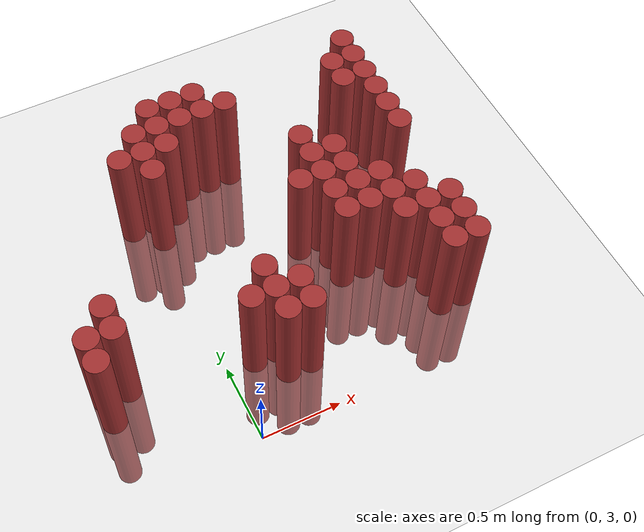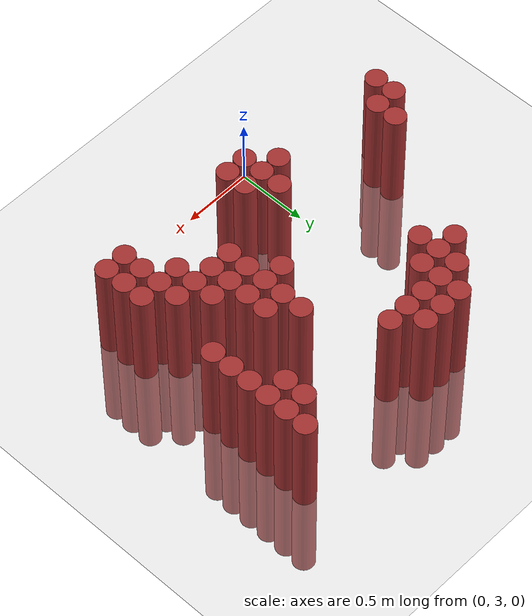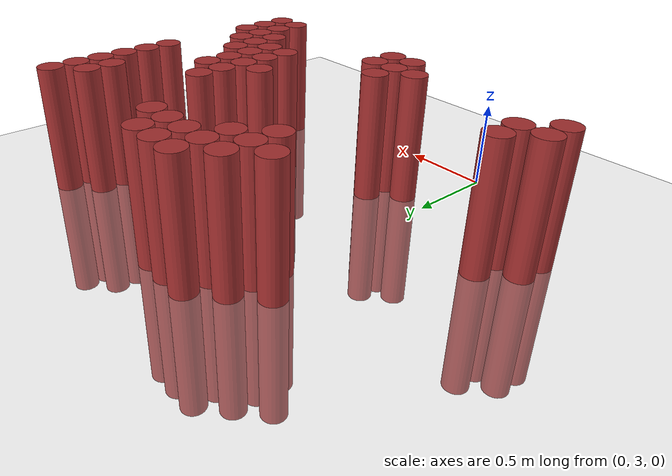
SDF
<sdf version="1.6">
 <world name="default">
  <model name="ground_plane">
   <static>1</static>
   <link name="link">
    <collision name="collision">
     <geometry><plane><normal>0 0 1</normal><size>100 100</size></plane></geometry>
     <surface><friction><ode><mu>100</mu><mu2>50</mu2></ode></friction></surface>
    </collision>
    <visual name="visual">
     <cast_shadows>0</cast_shadows>
     <geometry><plane><normal>0 0 1</normal><size>100 100</size></plane></geometry>
     <material>
      <script><uri>file://media/materials/scripts/gazebo.material</uri><name>Gazebo/Grey</name></script>
     </material>
    </visual>
   </link>
  </model>
  <model name="unit_cylinder_385">
   <static>1</static>
   <pose>-0.725000 3.475000 0.000000 0.000000 0.000000 0.000000</pose>
   <link name="link">
    <inertial>
     <mass>1</mass>
     <inertia><ixx>0.145833</ixx><ixy>0</ixy><ixz>0</ixz><iyy>0.145833</iyy><iyz>0</iyz><izz>0.125</izz></inertia>
    </inertial>
    <collision name="collision">
     <geometry><cylinder><radius>0.075000</radius><length>1.5</length></cylinder></geometry>
    </collision>
    <visual name="visual">
     <geometry><cylinder><radius>0.075000</radius><length>1.5</length></cylinder></geometry>
     <material>
      <ambient>0.648000 0.192000 0.192000 1</ambient>
      <diffuse>0.648000 0.192000 0.192000 1</diffuse>
     </material>
     <material>
      <script><name>Gazebo/Grey</name><uri>file://media/materials/scripts/gazebo.material</uri></script>
     </material>
    </visual>
   </link>
  </model>
  <model name="unit_cylinder_386">
   <static>1</static>
   <pose>-0.725000 3.625000 0.000000 0.000000 0.000000 0.000000</pose>
   <link name="link">
    <inertial>
     <mass>1</mass>
     <inertia><ixx>0.145833</ixx><ixy>0</ixy><ixz>0</ixz><iyy>0.145833</iyy><iyz>0</iyz><izz>0.125</izz></inertia>
    </inertial>
    <collision name="collision">
     <geometry><cylinder><radius>0.075000</radius><length>1.5</length></cylinder></geometry>
    </collision>
    <visual name="visual">
     <geometry><cylinder><radius>0.075000</radius><length>1.5</length></cylinder></geometry>
     <material>
      <ambient>0.648000 0.192000 0.192000 1</ambient>
      <diffuse>0.648000 0.192000 0.192000 1</diffuse>
     </material>
     <material>
      <script><name>Gazebo/Grey</name><uri>file://media/materials/scripts/gazebo.material</uri></script>
     </material>
    </visual>
   </link>
  </model>
  <model name="unit_cylinder_392">
   <static>1</static>
   <pose>-0.575000 3.625000 0.000000 0.000000 0.000000 0.000000</pose>
   <link name="link">
    <inertial>
     <mass>1</mass>
     <inertia><ixx>0.145833</ixx><ixy>0</ixy><ixz>0</ixz><iyy>0.145833</iyy><iyz>0</iyz><izz>0.125</izz></inertia>
    </inertial>
    <collision name="collision">
     <geometry><cylinder><radius>0.075000</radius><length>1.5</length></cylinder></geometry>
    </collision>
    <visual name="visual">
     <geometry><cylinder><radius>0.075000</radius><length>1.5</length></cylinder></geometry>
     <material>
      <ambient>0.648000 0.192000 0.192000 1</ambient>
      <diffuse>0.648000 0.192000 0.192000 1</diffuse>
     </material>
     <material>
      <script><name>Gazebo/Grey</name><uri>file://media/materials/scripts/gazebo.material</uri></script>
     </material>
    </visual>
   </link>
  </model>
  <model name="unit_cylinder_393">
   <static>1</static>
   <pose>-0.575000 3.775000 0.000000 0.000000 0.000000 0.000000</pose>
   <link name="link">
    <inertial>
     <mass>1</mass>
     <inertia><ixx>0.145833</ixx><ixy>0</ixy><ixz>0</ixz><iyy>0.145833</iyy><iyz>0</iyz><izz>0.125</izz></inertia>
    </inertial>
    <collision name="collision">
     <geometry><cylinder><radius>0.075000</radius><length>1.5</length></cylinder></geometry>
    </collision>
    <visual name="visual">
     <geometry><cylinder><radius>0.075000</radius><length>1.5</length></cylinder></geometry>
     <material>
      <ambient>0.648000 0.192000 0.192000 1</ambient>
      <diffuse>0.648000 0.192000 0.192000 1</diffuse>
     </material>
     <material>
      <script><name>Gazebo/Grey</name><uri>file://media/materials/scripts/gazebo.material</uri></script>
     </material>
    </visual>
   </link>
  </model>
  <model name="unit_cylinder_414">
   <static>1</static>
   <pose>-0.125000 4.675000 0.000000 0.000000 0.000000 0.000000</pose>
   <link name="link">
    <inertial>
     <mass>1</mass>
     <inertia><ixx>0.145833</ixx><ixy>0</ixy><ixz>0</ixz><iyy>0.145833</iyy><iyz>0</iyz><izz>0.125</izz></inertia>
    </inertial>
    <collision name="collision">
     <geometry><cylinder><radius>0.075000</radius><length>1.5</length></cylinder></geometry>
    </collision>
    <visual name="visual">
     <geometry><cylinder><radius>0.075000</radius><length>1.5</length></cylinder></geometry>
     <material>
      <ambient>0.648000 0.192000 0.192000 1</ambient>
      <diffuse>0.648000 0.192000 0.192000 1</diffuse>
     </material>
     <material>
      <script><name>Gazebo/Grey</name><uri>file://media/materials/scripts/gazebo.material</uri></script>
     </material>
    </visual>
   </link>
  </model>
  <model name="unit_cylinder_426">
   <static>1</static>
   <pose>0.025000 4.525000 0.000000 0.000000 0.000000 0.000000</pose>
   <link name="link">
    <inertial>
     <mass>1</mass>
     <inertia><ixx>0.145833</ixx><ixy>0</ixy><ixz>0</ixz><iyy>0.145833</iyy><iyz>0</iyz><izz>0.125</izz></inertia>
    </inertial>
    <collision name="collision">
     <geometry><cylinder><radius>0.075000</radius><length>1.5</length></cylinder></geometry>
    </collision>
    <visual name="visual">
     <geometry><cylinder><radius>0.075000</radius><length>1.5</length></cylinder></geometry>
     <material>
      <ambient>0.648000 0.192000 0.192000 1</ambient>
      <diffuse>0.648000 0.192000 0.192000 1</diffuse>
     </material>
     <material>
      <script><name>Gazebo/Grey</name><uri>file://media/materials/scripts/gazebo.material</uri></script>
     </material>
    </visual>
   </link>
  </model>
  <model name="unit_cylinder_427">
   <static>1</static>
   <pose>0.025000 4.675000 0.000000 0.000000 0.000000 0.000000</pose>
   <link name="link">
    <inertial>
     <mass>1</mass>
     <inertia><ixx>0.145833</ixx><ixy>0</ixy><ixz>0</ixz><iyy>0.145833</iyy><iyz>0</iyz><izz>0.125</izz></inertia>
    </inertial>
    <collision name="collision">
     <geometry><cylinder><radius>0.075000</radius><length>1.5</length></cylinder></geometry>
    </collision>
    <visual name="visual">
     <geometry><cylinder><radius>0.075000</radius><length>1.5</length></cylinder></geometry>
     <material>
      <ambient>0.648000 0.192000 0.192000 1</ambient>
      <diffuse>0.648000 0.192000 0.192000 1</diffuse>
     </material>
     <material>
      <script><name>Gazebo/Grey</name><uri>file://media/materials/scripts/gazebo.material</uri></script>
     </material>
    </visual>
   </link>
  </model>
  <model name="unit_cylinder_428">
   <static>1</static>
   <pose>0.025000 4.825000 0.000000 0.000000 0.000000 0.000000</pose>
   <link name="link">
    <inertial>
     <mass>1</mass>
     <inertia><ixx>0.145833</ixx><ixy>0</ixy><ixz>0</ixz><iyy>0.145833</iyy><iyz>0</iyz><izz>0.125</izz></inertia>
    </inertial>
    <collision name="collision">
     <geometry><cylinder><radius>0.075000</radius><length>1.5</length></cylinder></geometry>
    </collision>
    <visual name="visual">
     <geometry><cylinder><radius>0.075000</radius><length>1.5</length></cylinder></geometry>
     <material>
      <ambient>0.648000 0.192000 0.192000 1</ambient>
      <diffuse>0.648000 0.192000 0.192000 1</diffuse>
     </material>
     <material>
      <script><name>Gazebo/Grey</name><uri>file://media/materials/scripts/gazebo.material</uri></script>
     </material>
    </visual>
   </link>
  </model>
  <model name="unit_cylinder_441">
   <static>1</static>
   <pose>0.175000 3.475000 0.000000 0.000000 0.000000 0.000000</pose>
   <link name="link">
    <inertial>
     <mass>1</mass>
     <inertia><ixx>0.145833</ixx><ixy>0</ixy><ixz>0</ixz><iyy>0.145833</iyy><iyz>0</iyz><izz>0.125</izz></inertia>
    </inertial>
    <collision name="collision">
     <geometry><cylinder><radius>0.075000</radius><length>1.5</length></cylinder></geometry>
    </collision>
    <visual name="visual">
     <geometry><cylinder><radius>0.075000</radius><length>1.5</length></cylinder></geometry>
     <material>
      <ambient>0.648000 0.192000 0.192000 1</ambient>
      <diffuse>0.648000 0.192000 0.192000 1</diffuse>
     </material>
     <material>
      <script><name>Gazebo/Grey</name><uri>file://media/materials/scripts/gazebo.material</uri></script>
     </material>
    </visual>
   </link>
  </model>
  <model name="unit_cylinder_442">
   <static>1</static>
   <pose>0.175000 4.675000 0.000000 0.000000 0.000000 0.000000</pose>
   <link name="link">
    <inertial>
     <mass>1</mass>
     <inertia><ixx>0.145833</ixx><ixy>0</ixy><ixz>0</ixz><iyy>0.145833</iyy><iyz>0</iyz><izz>0.125</izz></inertia>
    </inertial>
    <collision name="collision">
     <geometry><cylinder><radius>0.075000</radius><length>1.5</length></cylinder></geometry>
    </collision>
    <visual name="visual">
     <geometry><cylinder><radius>0.075000</radius><length>1.5</length></cylinder></geometry>
     <material>
      <ambient>0.648000 0.192000 0.192000 1</ambient>
      <diffuse>0.648000 0.192000 0.192000 1</diffuse>
     </material>
     <material>
      <script><name>Gazebo/Grey</name><uri>file://media/materials/scripts/gazebo.material</uri></script>
     </material>
    </visual>
   </link>
  </model>
  <model name="unit_cylinder_443">
   <static>1</static>
   <pose>0.175000 4.825000 0.000000 0.000000 0.000000 0.000000</pose>
   <link name="link">
    <inertial>
     <mass>1</mass>
     <inertia><ixx>0.145833</ixx><ixy>0</ixy><ixz>0</ixz><iyy>0.145833</iyy><iyz>0</iyz><izz>0.125</izz></inertia>
    </inertial>
    <collision name="collision">
     <geometry><cylinder><radius>0.075000</radius><length>1.5</length></cylinder></geometry>
    </collision>
    <visual name="visual">
     <geometry><cylinder><radius>0.075000</radius><length>1.5</length></cylinder></geometry>
     <material>
      <ambient>0.648000 0.192000 0.192000 1</ambient>
      <diffuse>0.648000 0.192000 0.192000 1</diffuse>
     </material>
     <material>
      <script><name>Gazebo/Grey</name><uri>file://media/materials/scripts/gazebo.material</uri></script>
     </material>
    </visual>
   </link>
  </model>
  <model name="unit_cylinder_444">
   <static>1</static>
   <pose>0.175000 4.975000 0.000000 0.000000 0.000000 0.000000</pose>
   <link name="link">
    <inertial>
     <mass>1</mass>
     <inertia><ixx>0.145833</ixx><ixy>0</ixy><ixz>0</ixz><iyy>0.145833</iyy><iyz>0</iyz><izz>0.125</izz></inertia>
    </inertial>
    <collision name="collision">
     <geometry><cylinder><radius>0.075000</radius><length>1.5</length></cylinder></geometry>
    </collision>
    <visual name="visual">
     <geometry><cylinder><radius>0.075000</radius><length>1.5</length></cylinder></geometry>
     <material>
      <ambient>0.648000 0.192000 0.192000 1</ambient>
      <diffuse>0.648000 0.192000 0.192000 1</diffuse>
     </material>
     <material>
      <script><name>Gazebo/Grey</name><uri>file://media/materials/scripts/gazebo.material</uri></script>
     </material>
    </visual>
   </link>
  </model>
  <model name="unit_cylinder_455">
   <static>1</static>
   <pose>0.325000 3.325000 0.000000 0.000000 0.000000 0.000000</pose>
   <link name="link">
    <inertial>
     <mass>1</mass>
     <inertia><ixx>0.145833</ixx><ixy>0</ixy><ixz>0</ixz><iyy>0.145833</iyy><iyz>0</iyz><izz>0.125</izz></inertia>
    </inertial>
    <collision name="collision">
     <geometry><cylinder><radius>0.075000</radius><length>1.5</length></cylinder></geometry>
    </collision>
    <visual name="visual">
     <geometry><cylinder><radius>0.075000</radius><length>1.5</length></cylinder></geometry>
     <material>
      <ambient>0.648000 0.192000 0.192000 1</ambient>
      <diffuse>0.648000 0.192000 0.192000 1</diffuse>
     </material>
     <material>
      <script><name>Gazebo/Grey</name><uri>file://media/materials/scripts/gazebo.material</uri></script>
     </material>
    </visual>
   </link>
  </model>
  <model name="unit_cylinder_456">
   <static>1</static>
   <pose>0.325000 3.475000 0.000000 0.000000 0.000000 0.000000</pose>
   <link name="link">
    <inertial>
     <mass>1</mass>
     <inertia><ixx>0.145833</ixx><ixy>0</ixy><ixz>0</ixz><iyy>0.145833</iyy><iyz>0</iyz><izz>0.125</izz></inertia>
    </inertial>
    <collision name="collision">
     <geometry><cylinder><radius>0.075000</radius><length>1.5</length></cylinder></geometry>
    </collision>
    <visual name="visual">
     <geometry><cylinder><radius>0.075000</radius><length>1.5</length></cylinder></geometry>
     <material>
      <ambient>0.648000 0.192000 0.192000 1</ambient>
      <diffuse>0.648000 0.192000 0.192000 1</diffuse>
     </material>
     <material>
      <script><name>Gazebo/Grey</name><uri>file://media/materials/scripts/gazebo.material</uri></script>
     </material>
    </visual>
   </link>
  </model>
  <model name="unit_cylinder_457">
   <static>1</static>
   <pose>0.325000 3.625000 0.000000 0.000000 0.000000 0.000000</pose>
   <link name="link">
    <inertial>
     <mass>1</mass>
     <inertia><ixx>0.145833</ixx><ixy>0</ixy><ixz>0</ixz><iyy>0.145833</iyy><iyz>0</iyz><izz>0.125</izz></inertia>
    </inertial>
    <collision name="collision">
     <geometry><cylinder><radius>0.075000</radius><length>1.5</length></cylinder></geometry>
    </collision>
    <visual name="visual">
     <geometry><cylinder><radius>0.075000</radius><length>1.5</length></cylinder></geometry>
     <material>
      <ambient>0.648000 0.192000 0.192000 1</ambient>
      <diffuse>0.648000 0.192000 0.192000 1</diffuse>
     </material>
     <material>
      <script><name>Gazebo/Grey</name><uri>file://media/materials/scripts/gazebo.material</uri></script>
     </material>
    </visual>
   </link>
  </model>
  <model name="unit_cylinder_458">
   <static>1</static>
   <pose>0.325000 4.825000 0.000000 0.000000 0.000000 0.000000</pose>
   <link name="link">
    <inertial>
     <mass>1</mass>
     <inertia><ixx>0.145833</ixx><ixy>0</ixy><ixz>0</ixz><iyy>0.145833</iyy><iyz>0</iyz><izz>0.125</izz></inertia>
    </inertial>
    <collision name="collision">
     <geometry><cylinder><radius>0.075000</radius><length>1.5</length></cylinder></geometry>
    </collision>
    <visual name="visual">
     <geometry><cylinder><radius>0.075000</radius><length>1.5</length></cylinder></geometry>
     <material>
      <ambient>0.648000 0.192000 0.192000 1</ambient>
      <diffuse>0.648000 0.192000 0.192000 1</diffuse>
     </material>
     <material>
      <script><name>Gazebo/Grey</name><uri>file://media/materials/scripts/gazebo.material</uri></script>
     </material>
    </visual>
   </link>
  </model>
  <model name="unit_cylinder_459">
   <static>1</static>
   <pose>0.325000 4.975000 0.000000 0.000000 0.000000 0.000000</pose>
   <link name="link">
    <inertial>
     <mass>1</mass>
     <inertia><ixx>0.145833</ixx><ixy>0</ixy><ixz>0</ixz><iyy>0.145833</iyy><iyz>0</iyz><izz>0.125</izz></inertia>
    </inertial>
    <collision name="collision">
     <geometry><cylinder><radius>0.075000</radius><length>1.5</length></cylinder></geometry>
    </collision>
    <visual name="visual">
     <geometry><cylinder><radius>0.075000</radius><length>1.5</length></cylinder></geometry>
     <material>
      <ambient>0.648000 0.192000 0.192000 1</ambient>
      <diffuse>0.648000 0.192000 0.192000 1</diffuse>
     </material>
     <material>
      <script><name>Gazebo/Grey</name><uri>file://media/materials/scripts/gazebo.material</uri></script>
     </material>
    </visual>
   </link>
  </model>
  <model name="unit_cylinder_469">
   <static>1</static>
   <pose>0.475000 3.325000 0.000000 0.000000 0.000000 0.000000</pose>
   <link name="link">
    <inertial>
     <mass>1</mass>
     <inertia><ixx>0.145833</ixx><ixy>0</ixy><ixz>0</ixz><iyy>0.145833</iyy><iyz>0</iyz><izz>0.125</izz></inertia>
    </inertial>
    <collision name="collision">
     <geometry><cylinder><radius>0.075000</radius><length>1.5</length></cylinder></geometry>
    </collision>
    <visual name="visual">
     <geometry><cylinder><radius>0.075000</radius><length>1.5</length></cylinder></geometry>
     <material>
      <ambient>0.648000 0.192000 0.192000 1</ambient>
      <diffuse>0.648000 0.192000 0.192000 1</diffuse>
     </material>
     <material>
      <script><name>Gazebo/Grey</name><uri>file://media/materials/scripts/gazebo.material</uri></script>
     </material>
    </visual>
   </link>
  </model>
  <model name="unit_cylinder_470">
   <static>1</static>
   <pose>0.475000 3.475000 0.000000 0.000000 0.000000 0.000000</pose>
   <link name="link">
    <inertial>
     <mass>1</mass>
     <inertia><ixx>0.145833</ixx><ixy>0</ixy><ixz>0</ixz><iyy>0.145833</iyy><iyz>0</iyz><izz>0.125</izz></inertia>
    </inertial>
    <collision name="collision">
     <geometry><cylinder><radius>0.075000</radius><length>1.5</length></cylinder></geometry>
    </collision>
    <visual name="visual">
     <geometry><cylinder><radius>0.075000</radius><length>1.5</length></cylinder></geometry>
     <material>
      <ambient>0.648000 0.192000 0.192000 1</ambient>
      <diffuse>0.648000 0.192000 0.192000 1</diffuse>
     </material>
     <material>
      <script><name>Gazebo/Grey</name><uri>file://media/materials/scripts/gazebo.material</uri></script>
     </material>
    </visual>
   </link>
  </model>
  <model name="unit_cylinder_471">
   <static>1</static>
   <pose>0.475000 4.825000 0.000000 0.000000 0.000000 0.000000</pose>
   <link name="link">
    <inertial>
     <mass>1</mass>
     <inertia><ixx>0.145833</ixx><ixy>0</ixy><ixz>0</ixz><iyy>0.145833</iyy><iyz>0</iyz><izz>0.125</izz></inertia>
    </inertial>
    <collision name="collision">
     <geometry><cylinder><radius>0.075000</radius><length>1.5</length></cylinder></geometry>
    </collision>
    <visual name="visual">
     <geometry><cylinder><radius>0.075000</radius><length>1.5</length></cylinder></geometry>
     <material>
      <ambient>0.648000 0.192000 0.192000 1</ambient>
      <diffuse>0.648000 0.192000 0.192000 1</diffuse>
     </material>
     <material>
      <script><name>Gazebo/Grey</name><uri>file://media/materials/scripts/gazebo.material</uri></script>
     </material>
    </visual>
   </link>
  </model>
  <model name="unit_cylinder_472">
   <static>1</static>
   <pose>0.475000 4.975000 0.000000 0.000000 0.000000 0.000000</pose>
   <link name="link">
    <inertial>
     <mass>1</mass>
     <inertia><ixx>0.145833</ixx><ixy>0</ixy><ixz>0</ixz><iyy>0.145833</iyy><iyz>0</iyz><izz>0.125</izz></inertia>
    </inertial>
    <collision name="collision">
     <geometry><cylinder><radius>0.075000</radius><length>1.5</length></cylinder></geometry>
    </collision>
    <visual name="visual">
     <geometry><cylinder><radius>0.075000</radius><length>1.5</length></cylinder></geometry>
     <material>
      <ambient>0.648000 0.192000 0.192000 1</ambient>
      <diffuse>0.648000 0.192000 0.192000 1</diffuse>
     </material>
     <material>
      <script><name>Gazebo/Grey</name><uri>file://media/materials/scripts/gazebo.material</uri></script>
     </material>
    </visual>
   </link>
  </model>
  <model name="unit_cylinder_478">
   <static>1</static>
   <pose>0.625000 4.825000 0.000000 0.000000 0.000000 0.000000</pose>
   <link name="link">
    <inertial>
     <mass>1</mass>
     <inertia><ixx>0.145833</ixx><ixy>0</ixy><ixz>0</ixz><iyy>0.145833</iyy><iyz>0</iyz><izz>0.125</izz></inertia>
    </inertial>
    <collision name="collision">
     <geometry><cylinder><radius>0.075000</radius><length>1.5</length></cylinder></geometry>
    </collision>
    <visual name="visual">
     <geometry><cylinder><radius>0.075000</radius><length>1.5</length></cylinder></geometry>
     <material>
      <ambient>0.648000 0.192000 0.192000 1</ambient>
      <diffuse>0.648000 0.192000 0.192000 1</diffuse>
     </material>
     <material>
      <script><name>Gazebo/Grey</name><uri>file://media/materials/scripts/gazebo.material</uri></script>
     </material>
    </visual>
   </link>
  </model>
  <model name="unit_cylinder_488">
   <static>1</static>
   <pose>0.775000 4.075000 0.000000 0.000000 0.000000 0.000000</pose>
   <link name="link">
    <inertial>
     <mass>1</mass>
     <inertia><ixx>0.145833</ixx><ixy>0</ixy><ixz>0</ixz><iyy>0.145833</iyy><iyz>0</iyz><izz>0.125</izz></inertia>
    </inertial>
    <collision name="collision">
     <geometry><cylinder><radius>0.075000</radius><length>1.5</length></cylinder></geometry>
    </collision>
    <visual name="visual">
     <geometry><cylinder><radius>0.075000</radius><length>1.5</length></cylinder></geometry>
     <material>
      <ambient>0.648000 0.192000 0.192000 1</ambient>
      <diffuse>0.648000 0.192000 0.192000 1</diffuse>
     </material>
     <material>
      <script><name>Gazebo/Grey</name><uri>file://media/materials/scripts/gazebo.material</uri></script>
     </material>
    </visual>
   </link>
  </model>
  <model name="unit_cylinder_491">
   <static>1</static>
   <pose>0.925000 3.775000 0.000000 0.000000 0.000000 0.000000</pose>
   <link name="link">
    <inertial>
     <mass>1</mass>
     <inertia><ixx>0.145833</ixx><ixy>0</ixy><ixz>0</ixz><iyy>0.145833</iyy><iyz>0</iyz><izz>0.125</izz></inertia>
    </inertial>
    <collision name="collision">
     <geometry><cylinder><radius>0.075000</radius><length>1.5</length></cylinder></geometry>
    </collision>
    <visual name="visual">
     <geometry><cylinder><radius>0.075000</radius><length>1.5</length></cylinder></geometry>
     <material>
      <ambient>0.648000 0.192000 0.192000 1</ambient>
      <diffuse>0.648000 0.192000 0.192000 1</diffuse>
     </material>
     <material>
      <script><name>Gazebo/Grey</name><uri>file://media/materials/scripts/gazebo.material</uri></script>
     </material>
    </visual>
   </link>
  </model>
  <model name="unit_cylinder_492">
   <static>1</static>
   <pose>0.925000 3.925000 0.000000 0.000000 0.000000 0.000000</pose>
   <link name="link">
    <inertial>
     <mass>1</mass>
     <inertia><ixx>0.145833</ixx><ixy>0</ixy><ixz>0</ixz><iyy>0.145833</iyy><iyz>0</iyz><izz>0.125</izz></inertia>
    </inertial>
    <collision name="collision">
     <geometry><cylinder><radius>0.075000</radius><length>1.5</length></cylinder></geometry>
    </collision>
    <visual name="visual">
     <geometry><cylinder><radius>0.075000</radius><length>1.5</length></cylinder></geometry>
     <material>
      <ambient>0.648000 0.192000 0.192000 1</ambient>
      <diffuse>0.648000 0.192000 0.192000 1</diffuse>
     </material>
     <material>
      <script><name>Gazebo/Grey</name><uri>file://media/materials/scripts/gazebo.material</uri></script>
     </material>
    </visual>
   </link>
  </model>
  <model name="unit_cylinder_493">
   <static>1</static>
   <pose>0.925000 4.075000 0.000000 0.000000 0.000000 0.000000</pose>
   <link name="link">
    <inertial>
     <mass>1</mass>
     <inertia><ixx>0.145833</ixx><ixy>0</ixy><ixz>0</ixz><iyy>0.145833</iyy><iyz>0</iyz><izz>0.125</izz></inertia>
    </inertial>
    <collision name="collision">
     <geometry><cylinder><radius>0.075000</radius><length>1.5</length></cylinder></geometry>
    </collision>
    <visual name="visual">
     <geometry><cylinder><radius>0.075000</radius><length>1.5</length></cylinder></geometry>
     <material>
      <ambient>0.648000 0.192000 0.192000 1</ambient>
      <diffuse>0.648000 0.192000 0.192000 1</diffuse>
     </material>
     <material>
      <script><name>Gazebo/Grey</name><uri>file://media/materials/scripts/gazebo.material</uri></script>
     </material>
    </visual>
   </link>
  </model>
  <model name="unit_cylinder_494">
   <static>1</static>
   <pose>0.925000 4.225000 0.000000 0.000000 0.000000 0.000000</pose>
   <link name="link">
    <inertial>
     <mass>1</mass>
     <inertia><ixx>0.145833</ixx><ixy>0</ixy><ixz>0</ixz><iyy>0.145833</iyy><iyz>0</iyz><izz>0.125</izz></inertia>
    </inertial>
    <collision name="collision">
     <geometry><cylinder><radius>0.075000</radius><length>1.5</length></cylinder></geometry>
    </collision>
    <visual name="visual">
     <geometry><cylinder><radius>0.075000</radius><length>1.5</length></cylinder></geometry>
     <material>
      <ambient>0.648000 0.192000 0.192000 1</ambient>
      <diffuse>0.648000 0.192000 0.192000 1</diffuse>
     </material>
     <material>
      <script><name>Gazebo/Grey</name><uri>file://media/materials/scripts/gazebo.material</uri></script>
     </material>
    </visual>
   </link>
  </model>
  <model name="unit_cylinder_495">
   <static>1</static>
   <pose>0.925000 4.375000 0.000000 0.000000 0.000000 0.000000</pose>
   <link name="link">
    <inertial>
     <mass>1</mass>
     <inertia><ixx>0.145833</ixx><ixy>0</ixy><ixz>0</ixz><iyy>0.145833</iyy><iyz>0</iyz><izz>0.125</izz></inertia>
    </inertial>
    <collision name="collision">
     <geometry><cylinder><radius>0.075000</radius><length>1.5</length></cylinder></geometry>
    </collision>
    <visual name="visual">
     <geometry><cylinder><radius>0.075000</radius><length>1.5</length></cylinder></geometry>
     <material>
      <ambient>0.648000 0.192000 0.192000 1</ambient>
      <diffuse>0.648000 0.192000 0.192000 1</diffuse>
     </material>
     <material>
      <script><name>Gazebo/Grey</name><uri>file://media/materials/scripts/gazebo.material</uri></script>
     </material>
    </visual>
   </link>
  </model>
  <model name="unit_cylinder_496">
   <static>1</static>
   <pose>1.075000 3.775000 0.000000 0.000000 0.000000 0.000000</pose>
   <link name="link">
    <inertial>
     <mass>1</mass>
     <inertia><ixx>0.145833</ixx><ixy>0</ixy><ixz>0</ixz><iyy>0.145833</iyy><iyz>0</iyz><izz>0.125</izz></inertia>
    </inertial>
    <collision name="collision">
     <geometry><cylinder><radius>0.075000</radius><length>1.5</length></cylinder></geometry>
    </collision>
    <visual name="visual">
     <geometry><cylinder><radius>0.075000</radius><length>1.5</length></cylinder></geometry>
     <material>
      <ambient>0.648000 0.192000 0.192000 1</ambient>
      <diffuse>0.648000 0.192000 0.192000 1</diffuse>
     </material>
     <material>
      <script><name>Gazebo/Grey</name><uri>file://media/materials/scripts/gazebo.material</uri></script>
     </material>
    </visual>
   </link>
  </model>
  <model name="unit_cylinder_497">
   <static>1</static>
   <pose>1.075000 3.925000 0.000000 0.000000 0.000000 0.000000</pose>
   <link name="link">
    <inertial>
     <mass>1</mass>
     <inertia><ixx>0.145833</ixx><ixy>0</ixy><ixz>0</ixz><iyy>0.145833</iyy><iyz>0</iyz><izz>0.125</izz></inertia>
    </inertial>
    <collision name="collision">
     <geometry><cylinder><radius>0.075000</radius><length>1.5</length></cylinder></geometry>
    </collision>
    <visual name="visual">
     <geometry><cylinder><radius>0.075000</radius><length>1.5</length></cylinder></geometry>
     <material>
      <ambient>0.648000 0.192000 0.192000 1</ambient>
      <diffuse>0.648000 0.192000 0.192000 1</diffuse>
     </material>
     <material>
      <script><name>Gazebo/Grey</name><uri>file://media/materials/scripts/gazebo.material</uri></script>
     </material>
    </visual>
   </link>
  </model>
  <model name="unit_cylinder_498">
   <static>1</static>
   <pose>1.075000 4.075000 0.000000 0.000000 0.000000 0.000000</pose>
   <link name="link">
    <inertial>
     <mass>1</mass>
     <inertia><ixx>0.145833</ixx><ixy>0</ixy><ixz>0</ixz><iyy>0.145833</iyy><iyz>0</iyz><izz>0.125</izz></inertia>
    </inertial>
    <collision name="collision">
     <geometry><cylinder><radius>0.075000</radius><length>1.5</length></cylinder></geometry>
    </collision>
    <visual name="visual">
     <geometry><cylinder><radius>0.075000</radius><length>1.5</length></cylinder></geometry>
     <material>
      <ambient>0.648000 0.192000 0.192000 1</ambient>
      <diffuse>0.648000 0.192000 0.192000 1</diffuse>
     </material>
     <material>
      <script><name>Gazebo/Grey</name><uri>file://media/materials/scripts/gazebo.material</uri></script>
     </material>
    </visual>
   </link>
  </model>
  <model name="unit_cylinder_499">
   <static>1</static>
   <pose>1.075000 4.225000 0.000000 0.000000 0.000000 0.000000</pose>
   <link name="link">
    <inertial>
     <mass>1</mass>
     <inertia><ixx>0.145833</ixx><ixy>0</ixy><ixz>0</ixz><iyy>0.145833</iyy><iyz>0</iyz><izz>0.125</izz></inertia>
    </inertial>
    <collision name="collision">
     <geometry><cylinder><radius>0.075000</radius><length>1.5</length></cylinder></geometry>
    </collision>
    <visual name="visual">
     <geometry><cylinder><radius>0.075000</radius><length>1.5</length></cylinder></geometry>
     <material>
      <ambient>0.648000 0.192000 0.192000 1</ambient>
      <diffuse>0.648000 0.192000 0.192000 1</diffuse>
     </material>
     <material>
      <script><name>Gazebo/Grey</name><uri>file://media/materials/scripts/gazebo.material</uri></script>
     </material>
    </visual>
   </link>
  </model>
  <model name="unit_cylinder_502">
   <static>1</static>
   <pose>1.225000 3.625000 0.000000 0.000000 0.000000 0.000000</pose>
   <link name="link">
    <inertial>
     <mass>1</mass>
     <inertia><ixx>0.145833</ixx><ixy>0</ixy><ixz>0</ixz><iyy>0.145833</iyy><iyz>0</iyz><izz>0.125</izz></inertia>
    </inertial>
    <collision name="collision">
     <geometry><cylinder><radius>0.075000</radius><length>1.5</length></cylinder></geometry>
    </collision>
    <visual name="visual">
     <geometry><cylinder><radius>0.075000</radius><length>1.5</length></cylinder></geometry>
     <material>
      <ambient>0.648000 0.192000 0.192000 1</ambient>
      <diffuse>0.648000 0.192000 0.192000 1</diffuse>
     </material>
     <material>
      <script><name>Gazebo/Grey</name><uri>file://media/materials/scripts/gazebo.material</uri></script>
     </material>
    </visual>
   </link>
  </model>
  <model name="unit_cylinder_503">
   <static>1</static>
   <pose>1.225000 3.775000 0.000000 0.000000 0.000000 0.000000</pose>
   <link name="link">
    <inertial>
     <mass>1</mass>
     <inertia><ixx>0.145833</ixx><ixy>0</ixy><ixz>0</ixz><iyy>0.145833</iyy><iyz>0</iyz><izz>0.125</izz></inertia>
    </inertial>
    <collision name="collision">
     <geometry><cylinder><radius>0.075000</radius><length>1.5</length></cylinder></geometry>
    </collision>
    <visual name="visual">
     <geometry><cylinder><radius>0.075000</radius><length>1.5</length></cylinder></geometry>
     <material>
      <ambient>0.648000 0.192000 0.192000 1</ambient>
      <diffuse>0.648000 0.192000 0.192000 1</diffuse>
     </material>
     <material>
      <script><name>Gazebo/Grey</name><uri>file://media/materials/scripts/gazebo.material</uri></script>
     </material>
    </visual>
   </link>
  </model>
  <model name="unit_cylinder_504">
   <static>1</static>
   <pose>1.225000 3.925000 0.000000 0.000000 0.000000 0.000000</pose>
   <link name="link">
    <inertial>
     <mass>1</mass>
     <inertia><ixx>0.145833</ixx><ixy>0</ixy><ixz>0</ixz><iyy>0.145833</iyy><iyz>0</iyz><izz>0.125</izz></inertia>
    </inertial>
    <collision name="collision">
     <geometry><cylinder><radius>0.075000</radius><length>1.5</length></cylinder></geometry>
    </collision>
    <visual name="visual">
     <geometry><cylinder><radius>0.075000</radius><length>1.5</length></cylinder></geometry>
     <material>
      <ambient>0.648000 0.192000 0.192000 1</ambient>
      <diffuse>0.648000 0.192000 0.192000 1</diffuse>
     </material>
     <material>
      <script><name>Gazebo/Grey</name><uri>file://media/materials/scripts/gazebo.material</uri></script>
     </material>
    </visual>
   </link>
  </model>
  <model name="unit_cylinder_508">
   <static>1</static>
   <pose>1.375000 3.325000 0.000000 0.000000 0.000000 0.000000</pose>
   <link name="link">
    <inertial>
     <mass>1</mass>
     <inertia><ixx>0.145833</ixx><ixy>0</ixy><ixz>0</ixz><iyy>0.145833</iyy><iyz>0</iyz><izz>0.125</izz></inertia>
    </inertial>
    <collision name="collision">
     <geometry><cylinder><radius>0.075000</radius><length>1.5</length></cylinder></geometry>
    </collision>
    <visual name="visual">
     <geometry><cylinder><radius>0.075000</radius><length>1.5</length></cylinder></geometry>
     <material>
      <ambient>0.648000 0.192000 0.192000 1</ambient>
      <diffuse>0.648000 0.192000 0.192000 1</diffuse>
     </material>
     <material>
      <script><name>Gazebo/Grey</name><uri>file://media/materials/scripts/gazebo.material</uri></script>
     </material>
    </visual>
   </link>
  </model>
  <model name="unit_cylinder_509">
   <static>1</static>
   <pose>1.375000 3.475000 0.000000 0.000000 0.000000 0.000000</pose>
   <link name="link">
    <inertial>
     <mass>1</mass>
     <inertia><ixx>0.145833</ixx><ixy>0</ixy><ixz>0</ixz><iyy>0.145833</iyy><iyz>0</iyz><izz>0.125</izz></inertia>
    </inertial>
    <collision name="collision">
     <geometry><cylinder><radius>0.075000</radius><length>1.5</length></cylinder></geometry>
    </collision>
    <visual name="visual">
     <geometry><cylinder><radius>0.075000</radius><length>1.5</length></cylinder></geometry>
     <material>
      <ambient>0.648000 0.192000 0.192000 1</ambient>
      <diffuse>0.648000 0.192000 0.192000 1</diffuse>
     </material>
     <material>
      <script><name>Gazebo/Grey</name><uri>file://media/materials/scripts/gazebo.material</uri></script>
     </material>
    </visual>
   </link>
  </model>
  <model name="unit_cylinder_510">
   <static>1</static>
   <pose>1.375000 3.625000 0.000000 0.000000 0.000000 0.000000</pose>
   <link name="link">
    <inertial>
     <mass>1</mass>
     <inertia><ixx>0.145833</ixx><ixy>0</ixy><ixz>0</ixz><iyy>0.145833</iyy><iyz>0</iyz><izz>0.125</izz></inertia>
    </inertial>
    <collision name="collision">
     <geometry><cylinder><radius>0.075000</radius><length>1.5</length></cylinder></geometry>
    </collision>
    <visual name="visual">
     <geometry><cylinder><radius>0.075000</radius><length>1.5</length></cylinder></geometry>
     <material>
      <ambient>0.648000 0.192000 0.192000 1</ambient>
      <diffuse>0.648000 0.192000 0.192000 1</diffuse>
     </material>
     <material>
      <script><name>Gazebo/Grey</name><uri>file://media/materials/scripts/gazebo.material</uri></script>
     </material>
    </visual>
   </link>
  </model>
  <model name="unit_cylinder_511">
   <static>1</static>
   <pose>1.375000 3.775000 0.000000 0.000000 0.000000 0.000000</pose>
   <link name="link">
    <inertial>
     <mass>1</mass>
     <inertia><ixx>0.145833</ixx><ixy>0</ixy><ixz>0</ixz><iyy>0.145833</iyy><iyz>0</iyz><izz>0.125</izz></inertia>
    </inertial>
    <collision name="collision">
     <geometry><cylinder><radius>0.075000</radius><length>1.5</length></cylinder></geometry>
    </collision>
    <visual name="visual">
     <geometry><cylinder><radius>0.075000</radius><length>1.5</length></cylinder></geometry>
     <material>
      <ambient>0.648000 0.192000 0.192000 1</ambient>
      <diffuse>0.648000 0.192000 0.192000 1</diffuse>
     </material>
     <material>
      <script><name>Gazebo/Grey</name><uri>file://media/materials/scripts/gazebo.material</uri></script>
     </material>
    </visual>
   </link>
  </model>
  <model name="unit_cylinder_512">
   <static>1</static>
   <pose>1.375000 4.675000 0.000000 0.000000 0.000000 0.000000</pose>
   <link name="link">
    <inertial>
     <mass>1</mass>
     <inertia><ixx>0.145833</ixx><ixy>0</ixy><ixz>0</ixz><iyy>0.145833</iyy><iyz>0</iyz><izz>0.125</izz></inertia>
    </inertial>
    <collision name="collision">
     <geometry><cylinder><radius>0.075000</radius><length>1.5</length></cylinder></geometry>
    </collision>
    <visual name="visual">
     <geometry><cylinder><radius>0.075000</radius><length>1.5</length></cylinder></geometry>
     <material>
      <ambient>0.648000 0.192000 0.192000 1</ambient>
      <diffuse>0.648000 0.192000 0.192000 1</diffuse>
     </material>
     <material>
      <script><name>Gazebo/Grey</name><uri>file://media/materials/scripts/gazebo.material</uri></script>
     </material>
    </visual>
   </link>
  </model>
  <model name="unit_cylinder_513">
   <static>1</static>
   <pose>1.375000 4.825000 0.000000 0.000000 0.000000 0.000000</pose>
   <link name="link">
    <inertial>
     <mass>1</mass>
     <inertia><ixx>0.145833</ixx><ixy>0</ixy><ixz>0</ixz><iyy>0.145833</iyy><iyz>0</iyz><izz>0.125</izz></inertia>
    </inertial>
    <collision name="collision">
     <geometry><cylinder><radius>0.075000</radius><length>1.5</length></cylinder></geometry>
    </collision>
    <visual name="visual">
     <geometry><cylinder><radius>0.075000</radius><length>1.5</length></cylinder></geometry>
     <material>
      <ambient>0.648000 0.192000 0.192000 1</ambient>
      <diffuse>0.648000 0.192000 0.192000 1</diffuse>
     </material>
     <material>
      <script><name>Gazebo/Grey</name><uri>file://media/materials/scripts/gazebo.material</uri></script>
     </material>
    </visual>
   </link>
  </model>
  <model name="unit_cylinder_516">
   <static>1</static>
   <pose>1.525000 3.325000 0.000000 0.000000 0.000000 0.000000</pose>
   <link name="link">
    <inertial>
     <mass>1</mass>
     <inertia><ixx>0.145833</ixx><ixy>0</ixy><ixz>0</ixz><iyy>0.145833</iyy><iyz>0</iyz><izz>0.125</izz></inertia>
    </inertial>
    <collision name="collision">
     <geometry><cylinder><radius>0.075000</radius><length>1.5</length></cylinder></geometry>
    </collision>
    <visual name="visual">
     <geometry><cylinder><radius>0.075000</radius><length>1.5</length></cylinder></geometry>
     <material>
      <ambient>0.648000 0.192000 0.192000 1</ambient>
      <diffuse>0.648000 0.192000 0.192000 1</diffuse>
     </material>
     <material>
      <script><name>Gazebo/Grey</name><uri>file://media/materials/scripts/gazebo.material</uri></script>
     </material>
    </visual>
   </link>
  </model>
  <model name="unit_cylinder_517">
   <static>1</static>
   <pose>1.525000 3.475000 0.000000 0.000000 0.000000 0.000000</pose>
   <link name="link">
    <inertial>
     <mass>1</mass>
     <inertia><ixx>0.145833</ixx><ixy>0</ixy><ixz>0</ixz><iyy>0.145833</iyy><iyz>0</iyz><izz>0.125</izz></inertia>
    </inertial>
    <collision name="collision">
     <geometry><cylinder><radius>0.075000</radius><length>1.5</length></cylinder></geometry>
    </collision>
    <visual name="visual">
     <geometry><cylinder><radius>0.075000</radius><length>1.5</length></cylinder></geometry>
     <material>
      <ambient>0.648000 0.192000 0.192000 1</ambient>
      <diffuse>0.648000 0.192000 0.192000 1</diffuse>
     </material>
     <material>
      <script><name>Gazebo/Grey</name><uri>file://media/materials/scripts/gazebo.material</uri></script>
     </material>
    </visual>
   </link>
  </model>
  <model name="unit_cylinder_518">
   <static>1</static>
   <pose>1.525000 3.625000 0.000000 0.000000 0.000000 0.000000</pose>
   <link name="link">
    <inertial>
     <mass>1</mass>
     <inertia><ixx>0.145833</ixx><ixy>0</ixy><ixz>0</ixz><iyy>0.145833</iyy><iyz>0</iyz><izz>0.125</izz></inertia>
    </inertial>
    <collision name="collision">
     <geometry><cylinder><radius>0.075000</radius><length>1.5</length></cylinder></geometry>
    </collision>
    <visual name="visual">
     <geometry><cylinder><radius>0.075000</radius><length>1.5</length></cylinder></geometry>
     <material>
      <ambient>0.648000 0.192000 0.192000 1</ambient>
      <diffuse>0.648000 0.192000 0.192000 1</diffuse>
     </material>
     <material>
      <script><name>Gazebo/Grey</name><uri>file://media/materials/scripts/gazebo.material</uri></script>
     </material>
    </visual>
   </link>
  </model>
  <model name="unit_cylinder_519">
   <static>1</static>
   <pose>1.525000 4.225000 0.000000 0.000000 0.000000 0.000000</pose>
   <link name="link">
    <inertial>
     <mass>1</mass>
     <inertia><ixx>0.145833</ixx><ixy>0</ixy><ixz>0</ixz><iyy>0.145833</iyy><iyz>0</iyz><izz>0.125</izz></inertia>
    </inertial>
    <collision name="collision">
     <geometry><cylinder><radius>0.075000</radius><length>1.5</length></cylinder></geometry>
    </collision>
    <visual name="visual">
     <geometry><cylinder><radius>0.075000</radius><length>1.5</length></cylinder></geometry>
     <material>
      <ambient>0.648000 0.192000 0.192000 1</ambient>
      <diffuse>0.648000 0.192000 0.192000 1</diffuse>
     </material>
     <material>
      <script><name>Gazebo/Grey</name><uri>file://media/materials/scripts/gazebo.material</uri></script>
     </material>
    </visual>
   </link>
  </model>
  <model name="unit_cylinder_520">
   <static>1</static>
   <pose>1.525000 4.375000 0.000000 0.000000 0.000000 0.000000</pose>
   <link name="link">
    <inertial>
     <mass>1</mass>
     <inertia><ixx>0.145833</ixx><ixy>0</ixy><ixz>0</ixz><iyy>0.145833</iyy><iyz>0</iyz><izz>0.125</izz></inertia>
    </inertial>
    <collision name="collision">
     <geometry><cylinder><radius>0.075000</radius><length>1.5</length></cylinder></geometry>
    </collision>
    <visual name="visual">
     <geometry><cylinder><radius>0.075000</radius><length>1.5</length></cylinder></geometry>
     <material>
      <ambient>0.648000 0.192000 0.192000 1</ambient>
      <diffuse>0.648000 0.192000 0.192000 1</diffuse>
     </material>
     <material>
      <script><name>Gazebo/Grey</name><uri>file://media/materials/scripts/gazebo.material</uri></script>
     </material>
    </visual>
   </link>
  </model>
  <model name="unit_cylinder_521">
   <static>1</static>
   <pose>1.525000 4.525000 0.000000 0.000000 0.000000 0.000000</pose>
   <link name="link">
    <inertial>
     <mass>1</mass>
     <inertia><ixx>0.145833</ixx><ixy>0</ixy><ixz>0</ixz><iyy>0.145833</iyy><iyz>0</iyz><izz>0.125</izz></inertia>
    </inertial>
    <collision name="collision">
     <geometry><cylinder><radius>0.075000</radius><length>1.5</length></cylinder></geometry>
    </collision>
    <visual name="visual">
     <geometry><cylinder><radius>0.075000</radius><length>1.5</length></cylinder></geometry>
     <material>
      <ambient>0.648000 0.192000 0.192000 1</ambient>
      <diffuse>0.648000 0.192000 0.192000 1</diffuse>
     </material>
     <material>
      <script><name>Gazebo/Grey</name><uri>file://media/materials/scripts/gazebo.material</uri></script>
     </material>
    </visual>
   </link>
  </model>
  <model name="unit_cylinder_522">
   <static>1</static>
   <pose>1.525000 4.675000 0.000000 0.000000 0.000000 0.000000</pose>
   <link name="link">
    <inertial>
     <mass>1</mass>
     <inertia><ixx>0.145833</ixx><ixy>0</ixy><ixz>0</ixz><iyy>0.145833</iyy><iyz>0</iyz><izz>0.125</izz></inertia>
    </inertial>
    <collision name="collision">
     <geometry><cylinder><radius>0.075000</radius><length>1.5</length></cylinder></geometry>
    </collision>
    <visual name="visual">
     <geometry><cylinder><radius>0.075000</radius><length>1.5</length></cylinder></geometry>
     <material>
      <ambient>0.648000 0.192000 0.192000 1</ambient>
      <diffuse>0.648000 0.192000 0.192000 1</diffuse>
     </material>
     <material>
      <script><name>Gazebo/Grey</name><uri>file://media/materials/scripts/gazebo.material</uri></script>
     </material>
    </visual>
   </link>
  </model>
  <model name="unit_cylinder_523">
   <static>1</static>
   <pose>1.525000 4.825000 0.000000 0.000000 0.000000 0.000000</pose>
   <link name="link">
    <inertial>
     <mass>1</mass>
     <inertia><ixx>0.145833</ixx><ixy>0</ixy><ixz>0</ixz><iyy>0.145833</iyy><iyz>0</iyz><izz>0.125</izz></inertia>
    </inertial>
    <collision name="collision">
     <geometry><cylinder><radius>0.075000</radius><length>1.5</length></cylinder></geometry>
    </collision>
    <visual name="visual">
     <geometry><cylinder><radius>0.075000</radius><length>1.5</length></cylinder></geometry>
     <material>
      <ambient>0.648000 0.192000 0.192000 1</ambient>
      <diffuse>0.648000 0.192000 0.192000 1</diffuse>
     </material>
     <material>
      <script><name>Gazebo/Grey</name><uri>file://media/materials/scripts/gazebo.material</uri></script>
     </material>
    </visual>
   </link>
  </model>
  <model name="unit_cylinder_524">
   <static>1</static>
   <pose>1.525000 4.975000 0.000000 0.000000 0.000000 0.000000</pose>
   <link name="link">
    <inertial>
     <mass>1</mass>
     <inertia><ixx>0.145833</ixx><ixy>0</ixy><ixz>0</ixz><iyy>0.145833</iyy><iyz>0</iyz><izz>0.125</izz></inertia>
    </inertial>
    <collision name="collision">
     <geometry><cylinder><radius>0.075000</radius><length>1.5</length></cylinder></geometry>
    </collision>
    <visual name="visual">
     <geometry><cylinder><radius>0.075000</radius><length>1.5</length></cylinder></geometry>
     <material>
      <ambient>0.648000 0.192000 0.192000 1</ambient>
      <diffuse>0.648000 0.192000 0.192000 1</diffuse>
     </material>
     <material>
      <script><name>Gazebo/Grey</name><uri>file://media/materials/scripts/gazebo.material</uri></script>
     </material>
    </visual>
   </link>
  </model>
 </world>
</sdf>
